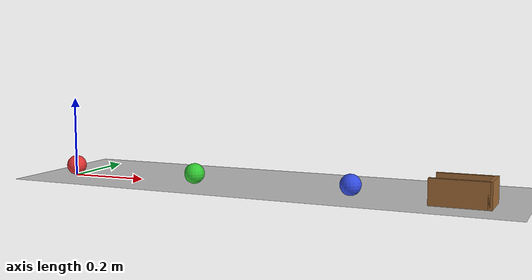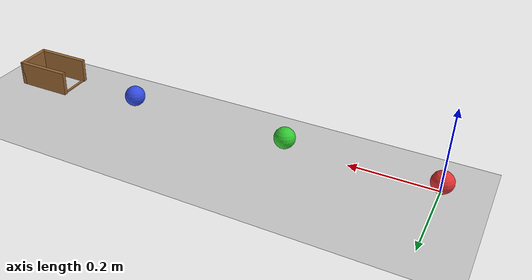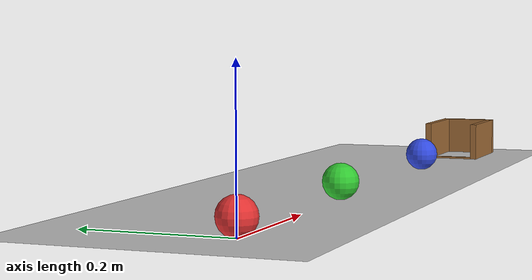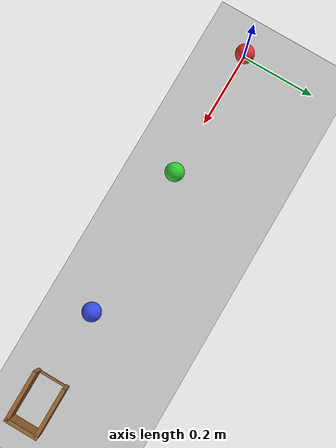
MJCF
<mujoco model="ball_chain_into_cup">
  <option timestep="0.002"/>
  <worldbody>
    <light name="sun" pos="0.5 0 2" dir="0 0 -1"/>
    <geom name="floor" type="plane" size="3 3 0.1" rgba="0.8 0.8 0.8 1"/>

    <body name="ball1" pos="0 0 0.025">
      <freejoint/>
      <geom name="ball1_geom" type="sphere" size="0.025" condim="6" friction="0.6 0.005 0.001" rgba="0.9 0.2 0.2 1"/>
    </body>
    <body name="ball2" pos="0.35 0 0.025">
      <freejoint/>
      <geom name="ball2_geom" type="sphere" size="0.025" condim="6" friction="0.6 0.005 0.001" rgba="0.2 0.8 0.2 1"/>
    </body>
    <body name="ball3" pos="0.75 0 0.025">
      <freejoint/>
      <geom name="ball3_geom" type="sphere" size="0.025" condim="6" friction="0.6 0.005 0.001" rgba="0.2 0.3 0.9 1"/>
    </body>

    <body name="cup" pos="1 0 0">
      <geom name="cup_back" type="box" pos="0.065 0 0.03" size="0.005 0.045 0.03" rgba="0.6 0.4 0.2 1"/>
      <geom name="cup_left" type="box" pos="0 0.04 0.03" size="0.065 0.005 0.03" rgba="0.6 0.4 0.2 1"/>
      <geom name="cup_right" type="box" pos="0 -0.04 0.03" size="0.065 0.005 0.03" rgba="0.6 0.4 0.2 1"/>
      <geom name="cup_lip" type="box" pos="-0.06 0 0.0015" size="0.003 0.035 0.0015" rgba="0.6 0.4 0.2 1"/>
    </body>
  </worldbody>

  <contact>
    <exclude name="ex12" body1="ball1" body2="ball2"/>
    <exclude name="ex13" body1="ball1" body2="ball3"/>
    <exclude name="ex23" body1="ball2" body2="ball3"/>
    <pair name="pair12" geom1="ball1_geom" geom2="ball2_geom" condim="1" solref="0.02 0.3" solimp="0.95 0.99 0.001"/>
    <pair name="pair13" geom1="ball1_geom" geom2="ball3_geom" condim="1" solref="0.02 0.3" solimp="0.95 0.99 0.001"/>
    <pair name="pair23" geom1="ball2_geom" geom2="ball3_geom" condim="1" solref="0.02 0.3" solimp="0.95 0.99 0.001"/>
  </contact>

  <keyframe>
    <key name="start" qpos="0 0 0.025 1 0 0 0  0.35 0 0.025 1 0 0 0  0.75 0 0.025 1 0 0 0" qvel="2.5 0 0 0 100 0  0 0 0 0 0 0  0 0 0 0 0 0"/>
  </keyframe>
</mujoco>
